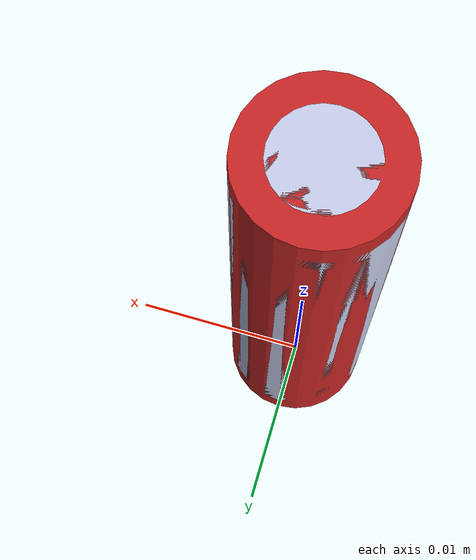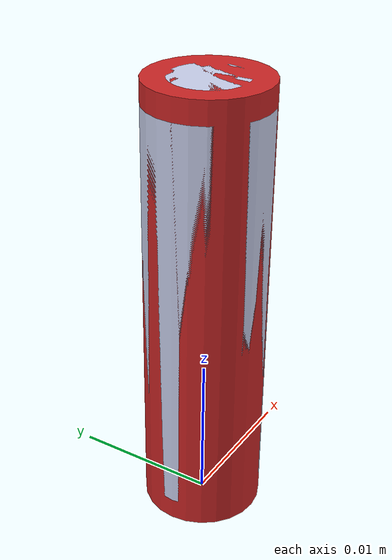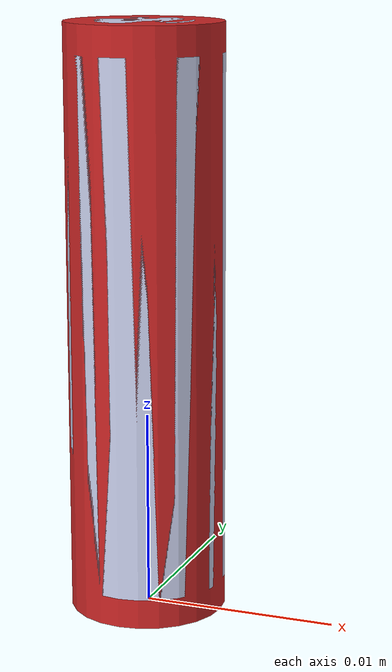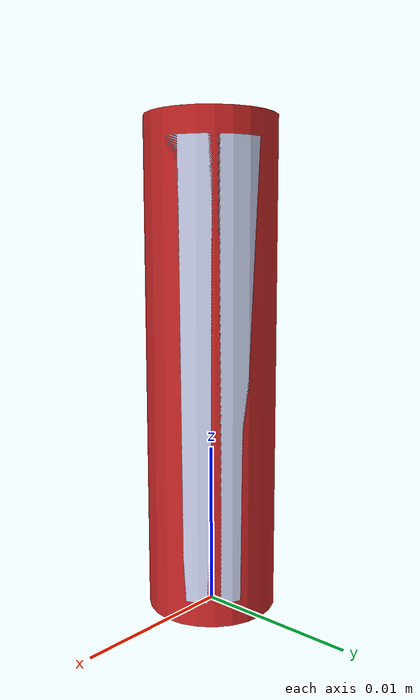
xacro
<?xml version="1.0"?>
<robot name="101350" xmlns:xacro="http://www.ros.org/wiki/xacro">
	<xacro:include filename="$(find object_description)/chair_urdf/101350.SLDPRT.urdf"/>
	<xacro:include filename="$(find object_description)/chair_xacro_re/for_assemble_macro.xacro"/>

	<xacro:property name="x_offset" value="0.0"/>
	<xacro:property name="y_offset" value="0.0"/>
	<xacro:property name="z_offset" value="0.0"/>

	<xacro:shaft_definition link_name="101350 shaft duplex part2-1-2-3-4/part3-1-2-3-4/part4-1-2-3-4-5-6/part5-1-2-3-4-5-6-7/part6-1-2-3-4-5-6-7 1"
							length="0.03"
							radius="0.004"
							x="${0.0 + x_offset}" y="${0.0 + y_offset}" z="${0.015 + z_offset}"
							rx="0" ry="0" rz="0"
							parent="101350.SLDPRT"/>

</robot>

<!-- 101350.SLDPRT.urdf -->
<robot
  name="101350.SLDPRT">
  <link
    name="101350.SLDPRT">
    <inertial>
      <origin
        xyz="-1.0658E-19 1.02479476536678E-18 0.015"
        rpy="-1.5707963267949 0 0" />
      <mass
        value="0.0014585" />
      <inertia
        ixx="1.0843E-07"
        ixy="-5.9762E-25"
        ixz="-5.31224624585665E-41"
        iyy="1.1439E-08"
        iyz="5.93878974317931E-24"
        izz="1.0843E-07" />
    </inertial>
    <visual>
      <origin
        xyz="0 0 0"
        rpy="0 0 0" />
      <geometry>
        <mesh
          filename="package://object_description/chair_meshes/101350.SLDPRT.STL" />
      </geometry>
      <material
        name="">
        <color
          rgba="0.79216 0.81961 0.93333 1" />
        <texture
          filename="package://object_description/textures/" />
      </material>
    </visual>
    <collision>
      <origin
        xyz="0 0 0"
        rpy="0 0 0" />
      <geometry>
        <mesh
          filename="package://object_description/chair_meshes/101350.SLDPRT.STL" />
      </geometry>
    </collision>
  </link>
	<gazebo reference="101350.SLDPRT">
    <material>Gazebo/Wood</material>
    <kp>100000.0</kp>
    <kd>1.0</kd>
    <mu1>100000</mu1>
    <mu2>100000</mu2>
    <maxVel>0</maxVel>
    <minDepth>0.00</minDepth>
  </gazebo>
</robot>

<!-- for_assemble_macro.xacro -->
<robot xmlns:xacro="http://wiki.ros.org/xacro">

	<xacro:macro name="hole_definition" params="link_name
												length radius
												x y z rx ry rz
												parent">
		<link name="${link_name}">
			<visual>
				<origin xyz="0 0 0" rpy="0 0 0"/>
				<geometry>
					<cylinder length="${length}" radius="${radius}"/>
				</geometry>
			</visual>
		</link>

		<joint name="${link_name} joint" type="fixed">
			<origin xyz="${x} ${y} ${z}" rpy="${rx} ${ry} ${rz}"/>
			<parent link="${parent}"/>
			<child link="${link_name}"/>
		</joint>

		<gazebo reference="${link_name}">
			<material>Gazebo/BlueTransparent</material>
		</gazebo>
	</xacro:macro>

	<xacro:macro name="shaft_definition" params="link_name
												length radius
												x y z rx ry rz
												parent">
		<link name="${link_name}">
			<visual>
				<origin xyz="0 0 0" rpy="0 0 0"/>
				<geometry>
					<cylinder length="${length}" radius="${radius}"/>
				</geometry>
			</visual>
		</link>

		<joint name="${link_name} joint" type="fixed">
			<origin xyz="${x} ${y} ${z}" rpy="${rx} ${ry} ${rz}"/>
			<parent link="${parent}"/>
			<child link="${link_name}"/>
		</joint>

		<gazebo reference="${link_name}">
			<material>Gazebo/RedTransparent</material>
		</gazebo>
	</xacro:macro>

	<xacro:macro name="surface_definition" params="link_name
												   box_x box_y box_z
												   x y z rx ry rz
												   parent">
		<link name="${link_name}">
			<visual>
				<origin xyz="0 0 0" rpy="0 0 0"/>
				<geometry>
					<box size="${box_x} ${box_y} ${box_z}"/>
				</geometry>
			</visual>
		</link>

		<joint name="${link_name} joint" type="fixed">
			<origin xyz="${x} ${y} ${z}" rpy="${rx} ${ry} ${rz}"/>
			<parent link="${parent}"/>
			<child link="${link_name}"/>
		</joint>

		<gazebo reference="${link_name}">
			<material>Gazebo/GreenTransparent</material>
		</gazebo>
	</xacro:macro>

</robot>
